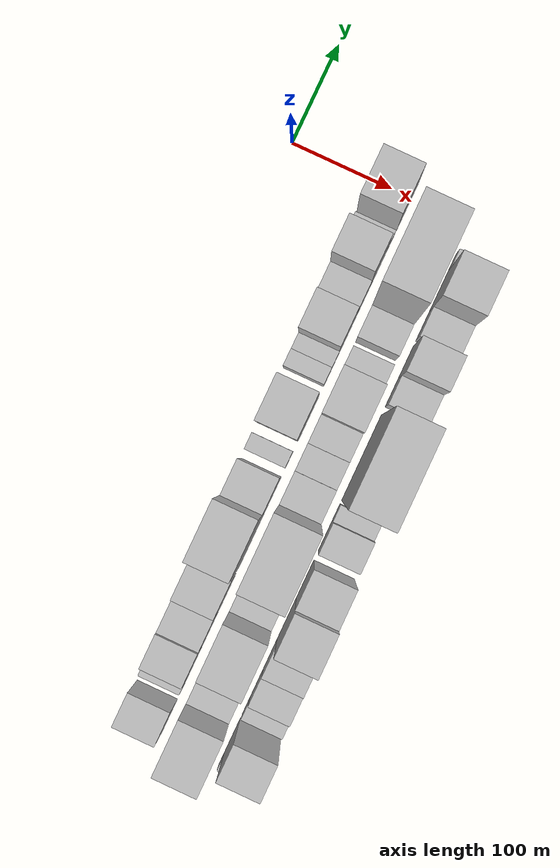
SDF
<sdf version="1.6">
 <world name="default">
  <model name="building_1">
   <static>1</static>
   <pose>100.0000 -515.0523 0 0.000000 0.000000 0.000000</pose>
   <link name="link">
    <pose>0 0 31.50 0 0 0</pose>
    <collision name="collision"><geometry><box><size>40.0000 31.8954 63.0000</size></box></geometry></collision>
    <visual name="visual">
     <cast_shadows>0</cast_shadows>
     <geometry><box><size>40.0000 31.8954 63.0000</size></box></geometry>
     <material>
      <script>
       <uri>model://HANNAS_wall/materials/scripts</uri>
       <uri>model://HANNAS_wall/materials/textures</uri>
       <name>vrc/HANNAS_wall</name>
      </script>
     </material>
    </visual>
   </link>
  </model>
  <model name="building_2">
   <static>1</static>
   <pose>100.0000 -483.6169 0 0.000000 0.000000 0.000000</pose>
   <link name="link">
    <pose>0 0 13.50 0 0 0</pose>
    <collision name="collision"><geometry><box><size>40.0000 12.9753 27.0000</size></box></geometry></collision>
    <visual name="visual">
     <cast_shadows>0</cast_shadows>
     <geometry><box><size>40.0000 12.9753 27.0000</size></box></geometry>
     <material>
      <script>
       <uri>model://HANNAS_wall/materials/scripts</uri>
       <uri>model://HANNAS_wall/materials/textures</uri>
       <name>vrc/HANNAS_wall</name>
      </script>
     </material>
    </visual>
   </link>
  </model>
  <model name="building_3">
   <static>1</static>
   <pose>100.0000 -460.8550 0 0.000000 0.000000 0.000000</pose>
   <link name="link">
    <pose>0 0 31.50 0 0 0</pose>
    <collision name="collision"><geometry><box><size>40.0000 32.5485 63.0000</size></box></geometry></collision>
    <visual name="visual">
     <cast_shadows>0</cast_shadows>
     <geometry><box><size>40.0000 32.5485 63.0000</size></box></geometry>
     <material>
      <script>
       <uri>model://HANNAS_wall/materials/scripts</uri>
       <uri>model://HANNAS_wall/materials/textures</uri>
       <name>vrc/HANNAS_wall</name>
      </script>
     </material>
    </visual>
   </link>
  </model>
  <model name="building_4">
   <static>1</static>
   <pose>100.0000 -428.4344 0 0.000000 0.000000 0.000000</pose>
   <link name="link">
    <pose>0 0 28.50 0 0 0</pose>
    <collision name="collision"><geometry><box><size>40.0000 32.2928 57.0000</size></box></geometry></collision>
    <visual name="visual">
     <cast_shadows>0</cast_shadows>
     <geometry><box><size>40.0000 32.2928 57.0000</size></box></geometry>
     <material>
      <script>
       <uri>model://HANNAS_wall/materials/scripts</uri>
       <uri>model://HANNAS_wall/materials/textures</uri>
       <name>vrc/HANNAS_wall</name>
      </script>
     </material>
    </visual>
   </link>
  </model>
  <model name="building_5">
   <static>1</static>
   <pose>100.0000 -394.0210 0 0.000000 0.000000 0.000000</pose>
   <link name="link">
    <pose>0 0 36.00 0 0 0</pose>
    <collision name="collision"><geometry><box><size>40.0000 36.5340 72.0000</size></box></geometry></collision>
    <visual name="visual">
     <cast_shadows>0</cast_shadows>
     <geometry><box><size>40.0000 36.5340 72.0000</size></box></geometry>
     <material>
      <script>
       <uri>model://HANNAS_wall/materials/scripts</uri>
       <uri>model://HANNAS_wall/materials/textures</uri>
       <name>vrc/HANNAS_wall</name>
      </script>
     </material>
    </visual>
   </link>
  </model>
  <model name="building_6">
   <static>1</static>
   <pose>100.0000 -342.2416 0 0.000000 0.000000 0.000000</pose>
   <link name="link">
    <pose>0 0 75.00 0 0 0</pose>
    <collision name="collision"><geometry><box><size>40.0000 55.0248 150.0000</size></box></geometry></collision>
    <visual name="visual">
     <cast_shadows>0</cast_shadows>
     <geometry><box><size>40.0000 55.0248 150.0000</size></box></geometry>
     <material>
      <script>
       <uri>model://HANNAS_wall/materials/scripts</uri>
       <uri>model://HANNAS_wall/materials/textures</uri>
       <name>vrc/HANNAS_wall</name>
      </script>
     </material>
    </visual>
   </link>
  </model>
  <model name="building_7">
   <static>1</static>
   <pose>100.0000 -297.3827 0 0.000000 0.000000 0.000000</pose>
   <link name="link">
    <pose>0 0 34.50 0 0 0</pose>
    <collision name="collision"><geometry><box><size>40.0000 34.6930 69.0000</size></box></geometry></collision>
    <visual name="visual">
     <cast_shadows>0</cast_shadows>
     <geometry><box><size>40.0000 34.6930 69.0000</size></box></geometry>
     <material>
      <script>
       <uri>model://HANNAS_wall/materials/scripts</uri>
       <uri>model://HANNAS_wall/materials/textures</uri>
       <name>vrc/HANNAS_wall</name>
      </script>
     </material>
    </visual>
   </link>
  </model>
  <model name="building_8">
   <static>1</static>
   <pose>100.0000 -262.9456 0 0.000000 0.000000 0.000000</pose>
   <link name="link">
    <pose>0 0 15.00 0 0 0</pose>
    <collision name="collision"><geometry><box><size>40.0000 16.1813 30.0000</size></box></geometry></collision>
    <visual name="visual">
     <cast_shadows>0</cast_shadows>
     <geometry><box><size>40.0000 16.1813 30.0000</size></box></geometry>
     <material>
      <script>
       <uri>model://HANNAS_wall/materials/scripts</uri>
       <uri>model://HANNAS_wall/materials/textures</uri>
       <name>vrc/HANNAS_wall</name>
      </script>
     </material>
    </visual>
   </link>
  </model>
  <model name="building_9">
   <static>1</static>
   <pose>100.0000 -222.4581 0 0.000000 0.000000 0.000000</pose>
   <link name="link">
    <pose>0 0 42.00 0 0 0</pose>
    <collision name="collision"><geometry><box><size>40.0000 44.7938 84.0000</size></box></geometry></collision>
    <visual name="visual">
     <cast_shadows>0</cast_shadows>
     <geometry><box><size>40.0000 44.7938 84.0000</size></box></geometry>
     <material>
      <script>
       <uri>model://HANNAS_wall/materials/scripts</uri>
       <uri>model://HANNAS_wall/materials/textures</uri>
       <name>vrc/HANNAS_wall</name>
      </script>
     </material>
    </visual>
   </link>
  </model>
  <model name="building_10">
   <static>1</static>
   <pose>100.0000 -181.6860 0 0.000000 0.000000 0.000000</pose>
   <link name="link">
    <pose>0 0 16.50 0 0 0</pose>
    <collision name="collision"><geometry><box><size>40.0000 16.7503 33.0000</size></box></geometry></collision>
    <visual name="visual">
     <cast_shadows>0</cast_shadows>
     <geometry><box><size>40.0000 16.7503 33.0000</size></box></geometry>
     <material>
      <script>
       <uri>model://HANNAS_wall/materials/scripts</uri>
       <uri>model://HANNAS_wall/materials/textures</uri>
       <name>vrc/HANNAS_wall</name>
      </script>
     </material>
    </visual>
   </link>
  </model>
  <model name="building_11">
   <static>1</static>
   <pose>100.0000 -165.3337 0 0.000000 0.000000 0.000000</pose>
   <link name="link">
    <pose>0 0 15.00 0 0 0</pose>
    <collision name="collision"><geometry><box><size>40.0000 15.9544 30.0000</size></box></geometry></collision>
    <visual name="visual">
     <cast_shadows>0</cast_shadows>
     <geometry><box><size>40.0000 15.9544 30.0000</size></box></geometry>
     <material>
      <script>
       <uri>model://HANNAS_wall/materials/scripts</uri>
       <uri>model://HANNAS_wall/materials/textures</uri>
       <name>vrc/HANNAS_wall</name>
      </script>
     </material>
    </visual>
   </link>
  </model>
  <model name="building_12">
   <static>1</static>
   <pose>100.0000 -138.3691 0 0.000000 0.000000 0.000000</pose>
   <link name="link">
    <pose>0 0 37.50 0 0 0</pose>
    <collision name="collision"><geometry><box><size>40.0000 37.9748 75.0000</size></box></geometry></collision>
    <visual name="visual">
     <cast_shadows>0</cast_shadows>
     <geometry><box><size>40.0000 37.9748 75.0000</size></box></geometry>
     <material>
      <script>
       <uri>model://HANNAS_wall/materials/scripts</uri>
       <uri>model://HANNAS_wall/materials/textures</uri>
       <name>vrc/HANNAS_wall</name>
      </script>
     </material>
    </visual>
   </link>
  </model>
  <model name="building_13">
   <static>1</static>
   <pose>100.0000 -105.5590 0 0.000000 0.000000 0.000000</pose>
   <link name="link">
    <pose>0 0 27.00 0 0 0</pose>
    <collision name="collision"><geometry><box><size>40.0000 27.6454 54.0000</size></box></geometry></collision>
    <visual name="visual">
     <cast_shadows>0</cast_shadows>
     <geometry><box><size>40.0000 27.6454 54.0000</size></box></geometry>
     <material>
      <script>
       <uri>model://HANNAS_wall/materials/scripts</uri>
       <uri>model://HANNAS_wall/materials/textures</uri>
       <name>vrc/HANNAS_wall</name>
      </script>
     </material>
    </visual>
   </link>
  </model>
  <model name="building_14">
   <static>1</static>
   <pose>100.0000 -74.0861 0 0.000000 0.000000 0.000000</pose>
   <link name="link">
    <pose>0 0 54.00 0 0 0</pose>
    <collision name="collision"><geometry><box><size>40.0000 35.3006 108.0000</size></box></geometry></collision>
    <visual name="visual">
     <cast_shadows>0</cast_shadows>
     <geometry><box><size>40.0000 35.3006 108.0000</size></box></geometry>
     <material>
      <script>
       <uri>model://HANNAS_wall/materials/scripts</uri>
       <uri>model://HANNAS_wall/materials/textures</uri>
       <name>vrc/HANNAS_wall</name>
      </script>
     </material>
    </visual>
   </link>
  </model>
  <model name="building_15">
   <static>1</static>
   <pose>100.0000 -47.4380 0 0.000000 0.000000 0.000000</pose>
   <link name="link">
    <pose>0 0 15.00 0 0 0</pose>
    <collision name="collision"><geometry><box><size>40.0000 17.9956 30.0000</size></box></geometry></collision>
    <visual name="visual">
     <cast_shadows>0</cast_shadows>
     <geometry><box><size>40.0000 17.9956 30.0000</size></box></geometry>
     <material>
      <script>
       <uri>model://HANNAS_wall/materials/scripts</uri>
       <uri>model://HANNAS_wall/materials/textures</uri>
       <name>vrc/HANNAS_wall</name>
      </script>
     </material>
    </visual>
   </link>
  </model>
  <model name="building_16">
   <static>1</static>
   <pose>100.0000 -9.7221 0 0.000000 0.000000 0.000000</pose>
   <link name="link">
    <pose>0 0 42.00 0 0 0</pose>
    <collision name="collision"><geometry><box><size>40.0000 47.4362 84.0000</size></box></geometry></collision>
    <visual name="visual">
     <cast_shadows>0</cast_shadows>
     <geometry><box><size>40.0000 47.4362 84.0000</size></box></geometry>
     <material>
      <script>
       <uri>model://HANNAS_wall/materials/scripts</uri>
       <uri>model://HANNAS_wall/materials/textures</uri>
       <name>vrc/HANNAS_wall</name>
      </script>
     </material>
    </visual>
   </link>
  </model>
  <model name="building_31">
   <static>1</static>
   <pose>149.0000 -510.9275 0 0.000000 0.000000 0.000000</pose>
   <link name="link">
    <pose>0 0 66.00 0 0 0</pose>
    <collision name="collision"><geometry><box><size>40.0000 50.1451 132.0000</size></box></geometry></collision>
    <visual name="visual">
     <cast_shadows>0</cast_shadows>
     <geometry><box><size>40.0000 50.1451 132.0000</size></box></geometry>
     <material>
      <script>
       <uri>model://HANNAS_wall/materials/scripts</uri>
       <uri>model://HANNAS_wall/materials/textures</uri>
       <name>vrc/HANNAS_wall</name>
      </script>
     </material>
    </visual>
   </link>
  </model>
  <model name="building_32">
   <static>1</static>
   <pose>149.0000 -469.3232 0 0.000000 0.000000 0.000000</pose>
   <link name="link">
    <pose>0 0 33.00 0 0 0</pose>
    <collision name="collision"><geometry><box><size>40.0000 33.0634 66.0000</size></box></geometry></collision>
    <visual name="visual">
     <cast_shadows>0</cast_shadows>
     <geometry><box><size>40.0000 33.0634 66.0000</size></box></geometry>
     <material>
      <script>
       <uri>model://HANNAS_wall/materials/scripts</uri>
       <uri>model://HANNAS_wall/materials/textures</uri>
       <name>vrc/HANNAS_wall</name>
      </script>
     </material>
    </visual>
   </link>
  </model>
  <model name="building_33">
   <static>1</static>
   <pose>149.0000 -427.5966 0 0.000000 0.000000 0.000000</pose>
   <link name="link">
    <pose>0 0 67.50 0 0 0</pose>
    <collision name="collision"><geometry><box><size>40.0000 50.3898 135.0000</size></box></geometry></collision>
    <visual name="visual">
     <cast_shadows>0</cast_shadows>
     <geometry><box><size>40.0000 50.3898 135.0000</size></box></geometry>
     <material>
      <script>
       <uri>model://HANNAS_wall/materials/scripts</uri>
       <uri>model://HANNAS_wall/materials/textures</uri>
       <name>vrc/HANNAS_wall</name>
      </script>
     </material>
    </visual>
   </link>
  </model>
  <model name="building_34">
   <static>1</static>
   <pose>149.0000 -388.8592 0 0.000000 0.000000 0.000000</pose>
   <link name="link">
    <pose>0 0 25.50 0 0 0</pose>
    <collision name="collision"><geometry><box><size>40.0000 27.0851 51.0000</size></box></geometry></collision>
    <visual name="visual">
     <cast_shadows>0</cast_shadows>
     <geometry><box><size>40.0000 27.0851 51.0000</size></box></geometry>
     <material>
      <script>
       <uri>model://HANNAS_wall/materials/scripts</uri>
       <uri>model://HANNAS_wall/materials/textures</uri>
       <name>vrc/HANNAS_wall</name>
      </script>
     </material>
    </visual>
   </link>
  </model>
  <model name="building_35">
   <static>1</static>
   <pose>149.0000 -334.2735 0 0.000000 0.000000 0.000000</pose>
   <link name="link">
    <pose>0 0 105.00 0 0 0</pose>
    <collision name="collision"><geometry><box><size>40.0000 66.0862 210.0000</size></box></geometry></collision>
    <visual name="visual">
     <cast_shadows>0</cast_shadows>
     <geometry><box><size>40.0000 66.0862 210.0000</size></box></geometry>
     <material>
      <script>
       <uri>model://HANNAS_wall/materials/scripts</uri>
       <uri>model://HANNAS_wall/materials/textures</uri>
       <name>vrc/HANNAS_wall</name>
      </script>
     </material>
    </visual>
   </link>
  </model>
  <model name="building_36">
   <static>1</static>
   <pose>149.0000 -285.1975 0 0.000000 0.000000 0.000000</pose>
   <link name="link">
    <pose>0 0 27.00 0 0 0</pose>
    <collision name="collision"><geometry><box><size>40.0000 32.0659 54.0000</size></box></geometry></collision>
    <visual name="visual">
     <cast_shadows>0</cast_shadows>
     <geometry><box><size>40.0000 32.0659 54.0000</size></box></geometry>
     <material>
      <script>
       <uri>model://HANNAS_wall/materials/scripts</uri>
       <uri>model://HANNAS_wall/materials/textures</uri>
       <name>vrc/HANNAS_wall</name>
      </script>
     </material>
    </visual>
   </link>
  </model>
  <model name="building_37">
   <static>1</static>
   <pose>149.0000 -255.9622 0 0.000000 0.000000 0.000000</pose>
   <link name="link">
    <pose>0 0 25.50 0 0 0</pose>
    <collision name="collision"><geometry><box><size>40.0000 26.4046 51.0000</size></box></geometry></collision>
    <visual name="visual">
     <cast_shadows>0</cast_shadows>
     <geometry><box><size>40.0000 26.4046 51.0000</size></box></geometry>
     <material>
      <script>
       <uri>model://HANNAS_wall/materials/scripts</uri>
       <uri>model://HANNAS_wall/materials/textures</uri>
       <name>vrc/HANNAS_wall</name>
      </script>
     </material>
    </visual>
   </link>
  </model>
  <model name="building_38">
   <static>1</static>
   <pose>149.0000 -228.9502 0 0.000000 0.000000 0.000000</pose>
   <link name="link">
    <pose>0 0 27.00 0 0 0</pose>
    <collision name="collision"><geometry><box><size>40.0000 27.6195 54.0000</size></box></geometry></collision>
    <visual name="visual">
     <cast_shadows>0</cast_shadows>
     <geometry><box><size>40.0000 27.6195 54.0000</size></box></geometry>
     <material>
      <script>
       <uri>model://HANNAS_wall/materials/scripts</uri>
       <uri>model://HANNAS_wall/materials/textures</uri>
       <name>vrc/HANNAS_wall</name>
      </script>
     </material>
    </visual>
   </link>
  </model>
  <model name="building_39">
   <static>1</static>
   <pose>149.0000 -192.6063 0 0.000000 0.000000 0.000000</pose>
   <link name="link">
    <pose>0 0 42.00 0 0 0</pose>
    <collision name="collision"><geometry><box><size>40.0000 45.0681 84.0000</size></box></geometry></collision>
    <visual name="visual">
     <cast_shadows>0</cast_shadows>
     <geometry><box><size>40.0000 45.0681 84.0000</size></box></geometry>
     <material>
      <script>
       <uri>model://HANNAS_wall/materials/scripts</uri>
       <uri>model://HANNAS_wall/materials/textures</uri>
       <name>vrc/HANNAS_wall</name>
      </script>
     </material>
    </visual>
   </link>
  </model>
  <model name="building_40">
   <static>1</static>
   <pose>149.0000 -159.1830 0 0.000000 0.000000 0.000000</pose>
   <link name="link">
    <pose>0 0 19.50 0 0 0</pose>
    <collision name="collision"><geometry><box><size>40.0000 21.7786 39.0000</size></box></geometry></collision>
    <visual name="visual">
     <cast_shadows>0</cast_shadows>
     <geometry><box><size>40.0000 21.7786 39.0000</size></box></geometry>
     <material>
      <script>
       <uri>model://HANNAS_wall/materials/scripts</uri>
       <uri>model://HANNAS_wall/materials/textures</uri>
       <name>vrc/HANNAS_wall</name>
      </script>
     </material>
    </visual>
   </link>
  </model>
  <model name="building_41">
   <static>1</static>
   <pose>149.0000 -126.1168 0 0.000000 0.000000 0.000000</pose>
   <link name="link">
    <pose>0 0 27.00 0 0 0</pose>
    <collision name="collision"><geometry><box><size>40.0000 30.3538 54.0000</size></box></geometry></collision>
    <visual name="visual">
     <cast_shadows>0</cast_shadows>
     <geometry><box><size>40.0000 30.3538 54.0000</size></box></geometry>
     <material>
      <script>
       <uri>model://HANNAS_wall/materials/scripts</uri>
       <uri>model://HANNAS_wall/materials/textures</uri>
       <name>vrc/HANNAS_wall</name>
      </script>
     </material>
    </visual>
   </link>
  </model>
  <model name="building_42">
   <static>1</static>
   <pose>149.0000 -71.7669 0 0.000000 0.000000 0.000000</pose>
   <link name="link">
    <pose>0 0 103.50 0 0 0</pose>
    <collision name="collision"><geometry><box><size>40.0000 78.3459 207.0000</size></box></geometry></collision>
    <visual name="visual">
     <cast_shadows>0</cast_shadows>
     <geometry><box><size>40.0000 78.3459 207.0000</size></box></geometry>
     <material>
      <script>
       <uri>model://HANNAS_wall/materials/scripts</uri>
       <uri>model://HANNAS_wall/materials/textures</uri>
       <name>vrc/HANNAS_wall</name>
      </script>
     </material>
    </visual>
   </link>
  </model>
  <model name="building_43">
   <static>1</static>
   <pose>149.0000 -18.5500 0 0.000000 0.000000 0.000000</pose>
   <link name="link">
    <pose>0 0 15.00 0 0 0</pose>
    <collision name="collision"><geometry><box><size>40.0000 16.0880 30.0000</size></box></geometry></collision>
    <visual name="visual">
     <cast_shadows>0</cast_shadows>
     <geometry><box><size>40.0000 16.0880 30.0000</size></box></geometry>
     <material>
      <script>
       <uri>model://HANNAS_wall/materials/scripts</uri>
       <uri>model://HANNAS_wall/materials/textures</uri>
       <name>vrc/HANNAS_wall</name>
      </script>
     </material>
    </visual>
   </link>
  </model>
  <model name="building_59">
   <static>1</static>
   <pose>198.0000 -530.0443 0 0.000000 0.000000 0.000000</pose>
   <link name="link">
    <pose>0 0 12.00 0 0 0</pose>
    <collision name="collision"><geometry><box><size>40.0000 11.9114 24.0000</size></box></geometry></collision>
    <visual name="visual">
     <cast_shadows>0</cast_shadows>
     <geometry><box><size>40.0000 11.9114 24.0000</size></box></geometry>
     <material>
      <script>
       <uri>model://HANNAS_wall/materials/scripts</uri>
       <uri>model://HANNAS_wall/materials/textures</uri>
       <name>vrc/HANNAS_wall</name>
      </script>
     </material>
    </visual>
   </link>
  </model>
  <model name="building_60">
   <static>1</static>
   <pose>198.0000 -507.0769 0 0.000000 0.000000 0.000000</pose>
   <link name="link">
    <pose>0 0 54.00 0 0 0</pose>
    <collision name="collision"><geometry><box><size>40.0000 34.0233 108.0000</size></box></geometry></collision>
    <visual name="visual">
     <cast_shadows>0</cast_shadows>
     <geometry><box><size>40.0000 34.0233 108.0000</size></box></geometry>
     <material>
      <script>
       <uri>model://HANNAS_wall/materials/scripts</uri>
       <uri>model://HANNAS_wall/materials/textures</uri>
       <name>vrc/HANNAS_wall</name>
      </script>
     </material>
    </visual>
   </link>
  </model>
  <model name="building_61">
   <static>1</static>
   <pose>198.0000 -477.9913 0 0.000000 0.000000 0.000000</pose>
   <link name="link">
    <pose>0 0 15.00 0 0 0</pose>
    <collision name="collision"><geometry><box><size>40.0000 16.1478 30.0000</size></box></geometry></collision>
    <visual name="visual">
     <cast_shadows>0</cast_shadows>
     <geometry><box><size>40.0000 16.1478 30.0000</size></box></geometry>
     <material>
      <script>
       <uri>model://HANNAS_wall/materials/scripts</uri>
       <uri>model://HANNAS_wall/materials/textures</uri>
       <name>vrc/HANNAS_wall</name>
      </script>
     </material>
    </visual>
   </link>
  </model>
  <model name="building_62">
   <static>1</static>
   <pose>198.0000 -455.9558 0 0.000000 0.000000 0.000000</pose>
   <link name="link">
    <pose>0 0 24.00 0 0 0</pose>
    <collision name="collision"><geometry><box><size>40.0000 27.9233 48.0000</size></box></geometry></collision>
    <visual name="visual">
     <cast_shadows>0</cast_shadows>
     <geometry><box><size>40.0000 27.9233 48.0000</size></box></geometry>
     <material>
      <script>
       <uri>model://HANNAS_wall/materials/scripts</uri>
       <uri>model://HANNAS_wall/materials/textures</uri>
       <name>vrc/HANNAS_wall</name>
      </script>
     </material>
    </visual>
   </link>
  </model>
  <model name="building_63">
   <static>1</static>
   <pose>198.0000 -427.4914 0 0.000000 0.000000 0.000000</pose>
   <link name="link">
    <pose>0 0 27.00 0 0 0</pose>
    <collision name="collision"><geometry><box><size>40.0000 29.0054 54.0000</size></box></geometry></collision>
    <visual name="visual">
     <cast_shadows>0</cast_shadows>
     <geometry><box><size>40.0000 29.0054 54.0000</size></box></geometry>
     <material>
      <script>
       <uri>model://HANNAS_wall/materials/scripts</uri>
       <uri>model://HANNAS_wall/materials/textures</uri>
       <name>vrc/HANNAS_wall</name>
      </script>
     </material>
    </visual>
   </link>
  </model>
  <model name="building_64">
   <static>1</static>
   <pose>198.0000 -392.6851 0 0.000000 0.000000 0.000000</pose>
   <link name="link">
    <pose>0 0 58.50 0 0 0</pose>
    <collision name="collision"><geometry><box><size>40.0000 40.6071 117.0000</size></box></geometry></collision>
    <visual name="visual">
     <cast_shadows>0</cast_shadows>
     <geometry><box><size>40.0000 40.6071 117.0000</size></box></geometry>
     <material>
      <script>
       <uri>model://HANNAS_wall/materials/scripts</uri>
       <uri>model://HANNAS_wall/materials/textures</uri>
       <name>vrc/HANNAS_wall</name>
      </script>
     </material>
    </visual>
   </link>
  </model>
  <model name="building_65">
   <static>1</static>
   <pose>198.0000 -353.7755 0 0.000000 0.000000 0.000000</pose>
   <link name="link">
    <pose>0 0 49.50 0 0 0</pose>
    <collision name="collision"><geometry><box><size>40.0000 37.2121 99.0000</size></box></geometry></collision>
    <visual name="visual">
     <cast_shadows>0</cast_shadows>
     <geometry><box><size>40.0000 37.2121 99.0000</size></box></geometry>
     <material>
      <script>
       <uri>model://HANNAS_wall/materials/scripts</uri>
       <uri>model://HANNAS_wall/materials/textures</uri>
       <name>vrc/HANNAS_wall</name>
      </script>
     </material>
    </visual>
   </link>
  </model>
  <model name="building_66">
   <static>1</static>
   <pose>198.0000 -311.0131 0 0.000000 0.000000 0.000000</pose>
   <link name="link">
    <pose>0 0 25.50 0 0 0</pose>
    <collision name="collision"><geometry><box><size>40.0000 30.3128 51.0000</size></box></geometry></collision>
    <visual name="visual">
     <cast_shadows>0</cast_shadows>
     <geometry><box><size>40.0000 30.3128 51.0000</size></box></geometry>
     <material>
      <script>
       <uri>model://HANNAS_wall/materials/scripts</uri>
       <uri>model://HANNAS_wall/materials/textures</uri>
       <name>vrc/HANNAS_wall</name>
      </script>
     </material>
    </visual>
   </link>
  </model>
  <model name="building_67">
   <static>1</static>
   <pose>198.0000 -287.6048 0 0.000000 0.000000 0.000000</pose>
   <link name="link">
    <pose>0 0 16.50 0 0 0</pose>
    <collision name="collision"><geometry><box><size>40.0000 16.5038 33.0000</size></box></geometry></collision>
    <visual name="visual">
     <cast_shadows>0</cast_shadows>
     <geometry><box><size>40.0000 16.5038 33.0000</size></box></geometry>
     <material>
      <script>
       <uri>model://HANNAS_wall/materials/scripts</uri>
       <uri>model://HANNAS_wall/materials/textures</uri>
       <name>vrc/HANNAS_wall</name>
      </script>
     </material>
    </visual>
   </link>
  </model>
  <model name="building_68">
   <static>1</static>
   <pose>198.0000 -233.8216 0 0.000000 0.000000 0.000000</pose>
   <link name="link">
    <pose>0 0 106.50 0 0 0</pose>
    <collision name="collision"><geometry><box><size>40.0000 85.0625 213.0000</size></box></geometry></collision>
    <visual name="visual">
     <cast_shadows>0</cast_shadows>
     <geometry><box><size>40.0000 85.0625 213.0000</size></box></geometry>
     <material>
      <script>
       <uri>model://HANNAS_wall/materials/scripts</uri>
       <uri>model://HANNAS_wall/materials/textures</uri>
       <name>vrc/HANNAS_wall</name>
      </script>
     </material>
    </visual>
   </link>
  </model>
  <model name="building_69">
   <static>1</static>
   <pose>198.0000 -169.3729 0 0.000000 0.000000 0.000000</pose>
   <link name="link">
    <pose>0 0 27.00 0 0 0</pose>
    <collision name="collision"><geometry><box><size>40.0000 27.8350 54.0000</size></box></geometry></collision>
    <visual name="visual">
     <cast_shadows>0</cast_shadows>
     <geometry><box><size>40.0000 27.8350 54.0000</size></box></geometry>
     <material>
      <script>
       <uri>model://HANNAS_wall/materials/scripts</uri>
       <uri>model://HANNAS_wall/materials/textures</uri>
       <name>vrc/HANNAS_wall</name>
      </script>
     </material>
    </visual>
   </link>
  </model>
  <model name="building_70">
   <static>1</static>
   <pose>198.0000 -138.8936 0 0.000000 0.000000 0.000000</pose>
   <link name="link">
    <pose>0 0 52.50 0 0 0</pose>
    <collision name="collision"><geometry><box><size>40.0000 33.1236 105.0000</size></box></geometry></collision>
    <visual name="visual">
     <cast_shadows>0</cast_shadows>
     <geometry><box><size>40.0000 33.1236 105.0000</size></box></geometry>
     <material>
      <script>
       <uri>model://HANNAS_wall/materials/scripts</uri>
       <uri>model://HANNAS_wall/materials/textures</uri>
       <name>vrc/HANNAS_wall</name>
      </script>
     </material>
    </visual>
   </link>
  </model>
  <model name="building_71">
   <static>1</static>
   <pose>198.0000 -103.0310 0 0.000000 0.000000 0.000000</pose>
   <link name="link">
    <pose>0 0 24.00 0 0 0</pose>
    <collision name="collision"><geometry><box><size>40.0000 28.6016 48.0000</size></box></geometry></collision>
    <visual name="visual">
     <cast_shadows>0</cast_shadows>
     <geometry><box><size>40.0000 28.6016 48.0000</size></box></geometry>
     <material>
      <script>
       <uri>model://HANNAS_wall/materials/scripts</uri>
       <uri>model://HANNAS_wall/materials/textures</uri>
       <name>vrc/HANNAS_wall</name>
      </script>
     </material>
    </visual>
   </link>
  </model>
  <model name="building_72">
   <static>1</static>
   <pose>198.0000 -68.1749 0 0.000000 0.000000 0.000000</pose>
   <link name="link">
    <pose>0 0 63.00 0 0 0</pose>
    <collision name="collision"><geometry><box><size>40.0000 41.1106 126.0000</size></box></geometry></collision>
    <visual name="visual">
     <cast_shadows>0</cast_shadows>
     <geometry><box><size>40.0000 41.1106 126.0000</size></box></geometry>
     <material>
      <script>
       <uri>model://HANNAS_wall/materials/scripts</uri>
       <uri>model://HANNAS_wall/materials/textures</uri>
       <name>vrc/HANNAS_wall</name>
      </script>
     </material>
    </visual>
   </link>
  </model>
  <model name="building_73">
   <static>1</static>
   <pose>198.0000 -38.8580 0 0.000000 0.000000 0.000000</pose>
   <link name="link">
    <pose>0 0 16.50 0 0 0</pose>
    <collision name="collision"><geometry><box><size>40.0000 17.5232 33.0000</size></box></geometry></collision>
    <visual name="visual">
     <cast_shadows>0</cast_shadows>
     <geometry><box><size>40.0000 17.5232 33.0000</size></box></geometry>
     <material>
      <script>
       <uri>model://HANNAS_wall/materials/scripts</uri>
       <uri>model://HANNAS_wall/materials/textures</uri>
       <name>vrc/HANNAS_wall</name>
      </script>
     </material>
    </visual>
   </link>
  </model>
 </world>
</sdf>
